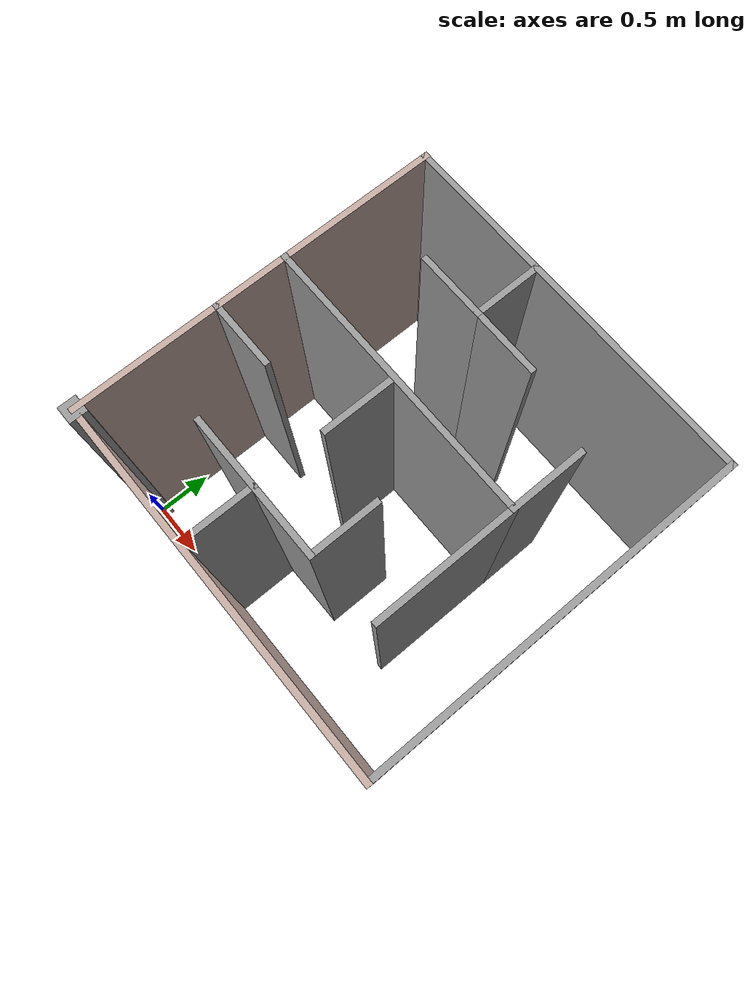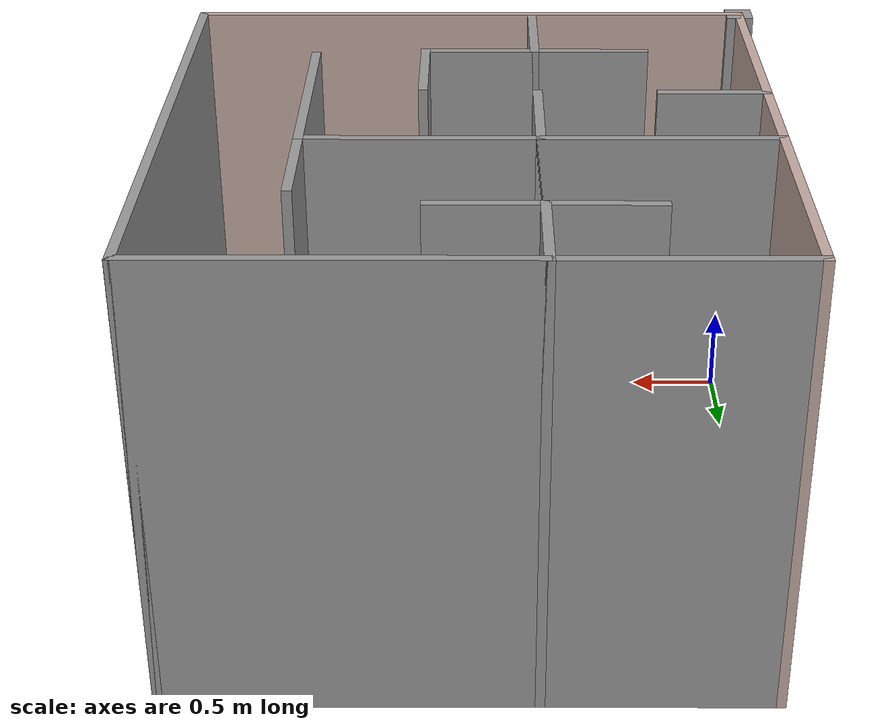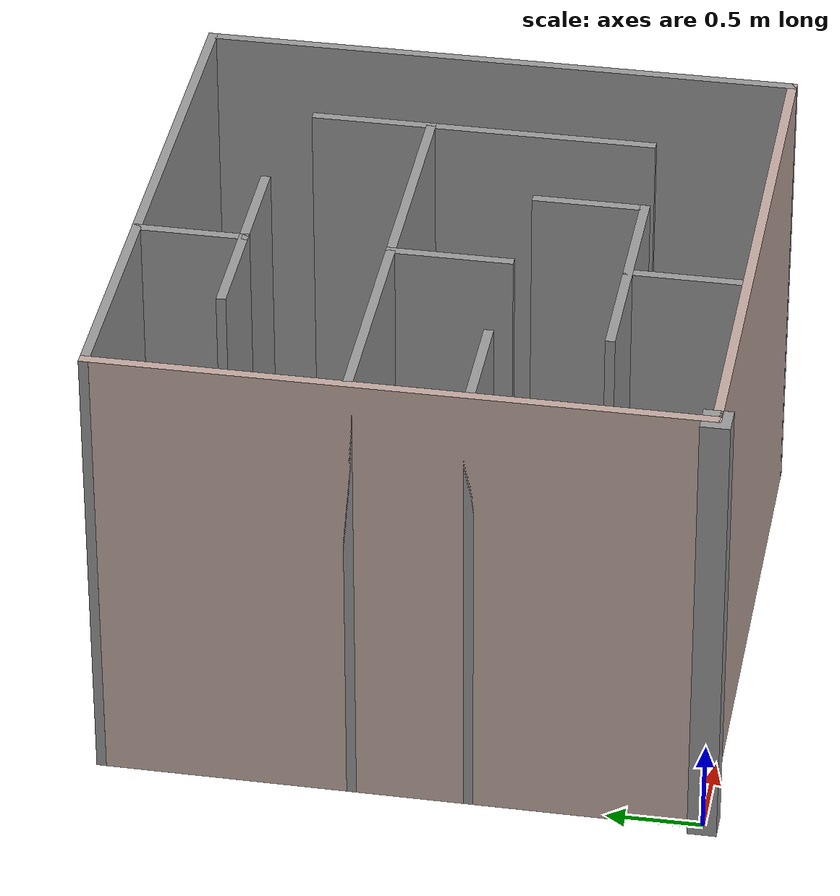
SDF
<sdf version="1.6">
 <world name="default">
  <physics name="1ms" type="ignored">
   <max_step_size>0.001</max_step_size>
   <real_time_factor>1.0</real_time_factor>
  </physics>
  <plugin filename="gz-sim-physics-system" name="gz::sim::systems::Physics"/>
  <plugin filename="gz-sim-user-commands-system" name="gz::sim::systems::UserCommands"/>
  <plugin filename="gz-sim-scene-broadcaster-system" name="gz::sim::systems::SceneBroadcaster"/>
  <plugin filename="gz-sim-sensors-system" name="gz::sim::systems::Sensors">
   <render_engine>ogre2</render_engine>
  </plugin>
  <plugin name="ros_clock_bridge" filename="libignition-gazebo-ros-clock-system.so"/>
  <scene><ambient>0.4 0.4 0.4 1</ambient><background>0.7 0.7 0.7 1</background><shadows>false</shadows></scene>
  <include><uri>model://modulo3_world</uri></include>
 </world>
</sdf>

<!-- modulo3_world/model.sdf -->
<sdf version='1.7'>
  <model name='modulo3_world'>
    <pose>1.5251 1.525 0 0 -0 0</pose>
    <link name='Wall_0'>
      <collision name='Wall_0_Collision'>
        <geometry>
          <box>
            <size>3.15 0.05 2.5</size>
          </box>
        </geometry>
        <pose>0 0 1.25 0 -0 0</pose>
      </collision>
      <visual name='Wall_0_Visual'>
        <pose>0 0 1.25 0 -0 0</pose>
        <geometry>
          <box>
            <size>3.15 0.05 2.5</size>
          </box>
        </geometry>
        <material>
          <script>
            <uri>file://media/materials/scripts/gazebo.material</uri>
            <name>Gazebo/Grey</name>
          </script>
          <ambient>0.760784 0.662745 0.627451 1</ambient>
        </material>
        <meta>
          <layer>0</layer>
        </meta>
      </visual>
      <pose>0.024899 -1.525 0 0 -0 0</pose>
    </link>
    <link name='Wall_12'>
      <collision name='Wall_12_Collision'>
        <geometry>
          <box>
            <size>0.6 0.05 2.5</size>
          </box>
        </geometry>
        <pose>0 0 1.25 0 -0 0</pose>
      </collision>
      <visual name='Wall_12_Visual'>
        <pose>0 0 1.25 0 -0 0</pose>
        <geometry>
          <box>
            <size>0.6 0.05 2.5</size>
          </box>
        </geometry>
        <material>
          <script>
            <uri>file://media/materials/scripts/gazebo.material</uri>
            <name>Gazebo/Grey</name>
          </script>
          <ambient>1 1 1 1</ambient>
        </material>
        <meta>
          <layer>0</layer>
        </meta>
      </visual>
      <pose>-0.325101 1.3 0 0 -0 -1.5708</pose>
    </link>
    <link name='Wall_16'>
      <collision name='Wall_16_Collision'>
        <geometry>
          <box>
            <size>0.6 0.05 2.5</size>
          </box>
        </geometry>
        <pose>0 0 1.25 0 -0 0</pose>
      </collision>
      <visual name='Wall_16_Visual'>
        <pose>0 0 1.25 0 -0 0</pose>
        <geometry>
          <box>
            <size>0.6 0.05 2.5</size>
          </box>
        </geometry>
        <material>
          <script>
            <uri>file://media/materials/scripts/gazebo.material</uri>
            <name>Gazebo/Grey</name>
          </script>
          <ambient>1 1 1 1</ambient>
        </material>
        <meta>
          <layer>0</layer>
        </meta>
      </visual>
      <pose>-0.050101 1.025 0 0 -0 0</pose>
    </link>
    <link name='Wall_18'>
      <collision name='Wall_18_Collision'>
        <geometry>
          <box>
            <size>0.6 0.05 2.5</size>
          </box>
        </geometry>
        <pose>0 0 1.25 0 -0 0</pose>
      </collision>
      <visual name='Wall_18_Visual'>
        <pose>0 0 1.25 0 -0 0</pose>
        <geometry>
          <box>
            <size>0.6 0.05 2.5</size>
          </box>
        </geometry>
        <material>
          <script>
            <uri>file://media/materials/scripts/gazebo.material</uri>
            <name>Gazebo/Grey</name>
          </script>
          <ambient>1 1 1 1</ambient>
        </material>
        <meta>
          <layer>0</layer>
        </meta>
      </visual>
      <pose>-0.600101 1.025 0 0 -0 3.14159</pose>
    </link>
    <link name='Wall_20'>
      <collision name='Wall_20_Collision'>
        <geometry>
          <box>
            <size>2.45 0.05 2.5</size>
          </box>
        </geometry>
        <pose>0 0 1.25 0 -0 0</pose>
      </collision>
      <visual name='Wall_20_Visual'>
        <pose>0 0 1.25 0 -0 0</pose>
        <geometry>
          <box>
            <size>2.45 0.05 2.5</size>
          </box>
        </geometry>
        <material>
          <script>
            <uri>file://media/materials/scripts/gazebo.material</uri>
            <name>Gazebo/Grey</name>
          </script>
          <ambient>1 1 1 1</ambient>
        </material>
        <meta>
          <layer>0</layer>
        </meta>
      </visual>
      <pose>-0.325101 0.275 0 0 -0 0</pose>
    </link>
    <link name='Wall_22'>
      <collision name='Wall_22_Collision'>
        <geometry>
          <box>
            <size>0.65 0.05 2.5</size>
          </box>
        </geometry>
        <pose>0 0 1.25 0 -0 0</pose>
      </collision>
      <visual name='Wall_22_Visual'>
        <pose>0 0 1.25 0 -0 0</pose>
        <geometry>
          <box>
            <size>0.65 0.05 2.5</size>
          </box>
        </geometry>
        <material>
          <script>
            <uri>file://media/materials/scripts/gazebo.material</uri>
            <name>Gazebo/Grey</name>
          </script>
          <ambient>1 1 1 1</ambient>
        </material>
        <meta>
          <layer>0</layer>
        </meta>
      </visual>
      <pose>0.874899 0.575 0 0 -0 1.5708</pose>
    </link>
    <link name='Wall_24'>
      <collision name='Wall_24_Collision'>
        <geometry>
          <box>
            <size>1.2 0.05 2.5</size>
          </box>
        </geometry>
        <pose>0 0 1.25 0 -0 0</pose>
      </collision>
      <visual name='Wall_24_Visual'>
        <pose>0 0 1.25 0 -0 0</pose>
        <geometry>
          <box>
            <size>1.2 0.05 2.5</size>
          </box>
        </geometry>
        <material>
          <script>
            <uri>file://media/materials/scripts/gazebo.material</uri>
            <name>Gazebo/Grey</name>
          </script>
          <ambient>1 1 1 1</ambient>
        </material>
        <meta>
          <layer>0</layer>
        </meta>
      </visual>
      <pose>0.874899 -0.3 0 0 -0 -1.5708</pose>
    </link>
    <link name='Wall_26'>
      <collision name='Wall_26_Collision'>
        <geometry>
          <box>
            <size>0.6 0.05 2.5</size>
          </box>
        </geometry>
        <pose>0 0 1.25 0 -0 0</pose>
      </collision>
      <visual name='Wall_26_Visual'>
        <pose>0 0 1.25 0 -0 0</pose>
        <geometry>
          <box>
            <size>0.6 0.05 2.5</size>
          </box>
        </geometry>
        <material>
          <script>
            <uri>file://media/materials/scripts/gazebo.material</uri>
            <name>Gazebo/Grey</name>
          </script>
          <ambient>1 1 1 1</ambient>
        </material>
        <meta>
          <layer>0</layer>
        </meta>
      </visual>
      <pose>-1.2501 -0.325 0 0 -0 0</pose>
    </link>
    <link name='Wall_3'>
      <collision name='Wall_3_Collision'>
        <geometry>
          <box>
            <size>0.15 0.15 2.5</size>
          </box>
        </geometry>
        <pose>0 0 1.25 0 -0 0</pose>
      </collision>
      <visual name='Wall_3_Visual'>
        <pose>0 0 1.25 0 -0 0</pose>
        <geometry>
          <box>
            <size>0.15 0.15 2.5</size>
          </box>
        </geometry>
        <material>
          <script>
            <uri>file://media/materials/scripts/gazebo.material</uri>
            <name>Gazebo/Grey</name>
          </script>
          <ambient>1 1 1 1</ambient>
        </material>
        <meta>
          <layer>0</layer>
        </meta>
      </visual>
      <pose>-1.5251 -1.525 0 0 -0 0</pose>
    </link>
    <link name='Wall_30'>
      <collision name='Wall_30_Collision'>
        <geometry>
          <box>
            <size>0.6 0.05 2.5</size>
          </box>
        </geometry>
        <pose>0 0 1.25 0 -0 0</pose>
      </collision>
      <visual name='Wall_30_Visual'>
        <pose>0 0 1.25 0 -0 0</pose>
        <geometry>
          <box>
            <size>0.6 0.05 2.5</size>
          </box>
        </geometry>
        <material>
          <script>
            <uri>file://media/materials/scripts/gazebo.material</uri>
            <name>Gazebo/Grey</name>
          </script>
          <ambient>1 1 1 1</ambient>
        </material>
        <meta>
          <layer>0</layer>
        </meta>
      </visual>
      <pose>-0.325101 -1.2 0 0 -0 -1.5708</pose>
    </link>
    <link name='Wall_32'>
      <collision name='Wall_32_Collision'>
        <geometry>
          <box>
            <size>1.25 0.05 2.5</size>
          </box>
        </geometry>
        <pose>0 0 1.25 0 -0 0</pose>
      </collision>
      <visual name='Wall_32_Visual'>
        <pose>0 0 1.25 0 -0 0</pose>
        <geometry>
          <box>
            <size>1.25 0.05 2.5</size>
          </box>
        </geometry>
        <material>
          <script>
            <uri>file://media/materials/scripts/gazebo.material</uri>
            <name>Gazebo/Grey</name>
          </script>
          <ambient>1 1 1 1</ambient>
        </material>
        <meta>
          <layer>0</layer>
        </meta>
      </visual>
      <pose>-0.325101 -0.925 0 0 -0 0</pose>
    </link>
    <link name='Wall_34'>
      <collision name='Wall_34_Collision'>
        <geometry>
          <box>
            <size>0.6 0.05 2.5</size>
          </box>
        </geometry>
        <pose>0 0 1.25 0 -0 0</pose>
      </collision>
      <visual name='Wall_34_Visual'>
        <pose>0 0 1.25 0 -0 0</pose>
        <geometry>
          <box>
            <size>0.6 0.05 2.5</size>
          </box>
        </geometry>
        <material>
          <script>
            <uri>file://media/materials/scripts/gazebo.material</uri>
            <name>Gazebo/Grey</name>
          </script>
          <ambient>1 1 1 1</ambient>
        </material>
        <meta>
          <layer>0</layer>
        </meta>
      </visual>
      <pose>0.274899 -0.65 0 0 -0 1.5708</pose>
    </link>
    <link name='Wall_36'>
      <collision name='Wall_36_Collision'>
        <geometry>
          <box>
            <size>0.65 0.05 2.5</size>
          </box>
        </geometry>
        <pose>0 0 1.25 0 -0 0</pose>
      </collision>
      <visual name='Wall_36_Visual'>
        <pose>0 0 1.25 0 -0 0</pose>
        <geometry>
          <box>
            <size>0.65 0.05 2.5</size>
          </box>
        </geometry>
        <material>
          <script>
            <uri>file://media/materials/scripts/gazebo.material</uri>
            <name>Gazebo/Grey</name>
          </script>
          <ambient>1 1 1 1</ambient>
        </material>
        <meta>
          <layer>0</layer>
        </meta>
      </visual>
      <pose>-0.325101 -0.025 0 0 -0 -1.5708</pose>
    </link>
    <link name='Wall_5'>
      <collision name='Wall_5_Collision'>
        <geometry>
          <box>
            <size>3.15 0.05 2.5</size>
          </box>
        </geometry>
        <pose>0 0 1.25 0 -0 0</pose>
      </collision>
      <visual name='Wall_5_Visual'>
        <pose>0 0 1.25 0 -0 0</pose>
        <geometry>
          <box>
            <size>3.15 0.05 2.5</size>
          </box>
        </geometry>
        <material>
          <script>
            <uri>file://media/materials/scripts/gazebo.material</uri>
            <name>Gazebo/Grey</name>
          </script>
          <ambient>0.760784 0.662745 0.627451 1</ambient>
        </material>
        <meta>
          <layer>0</layer>
        </meta>
      </visual>
      <pose>-1.5251 0.025 0 0 -0 1.5708</pose>
    </link>
    <link name='Wall_7'>
      <collision name='Wall_7_Collision'>
        <geometry>
          <box>
            <size>3.1504 0.05 2.5</size>
          </box>
        </geometry>
        <pose>0 0 1.25 0 -0 0</pose>
      </collision>
      <visual name='Wall_7_Visual'>
        <pose>0 0 1.25 0 -0 0</pose>
        <geometry>
          <box>
            <size>3.1504 0.05 2.5</size>
          </box>
        </geometry>
        <material>
          <script>
            <uri>file://media/materials/scripts/gazebo.material</uri>
            <name>Gazebo/Grey</name>
          </script>
          <ambient>1 1 1 1</ambient>
        </material>
        <meta>
          <layer>0</layer>
        </meta>
      </visual>
      <pose>0.024899 1.575 0 0 -0 0</pose>
    </link>
    <link name='Wall_9'>
      <collision name='Wall_9_Collision'>
        <geometry>
          <box>
            <size>3.15 0.05 2.5</size>
          </box>
        </geometry>
        <pose>0 0 1.25 0 -0 0</pose>
      </collision>
      <visual name='Wall_9_Visual'>
        <pose>0 0 1.25 0 -0 0</pose>
        <geometry>
          <box>
            <size>3.15 0.05 2.5</size>
          </box>
        </geometry>
        <material>
          <script>
            <uri>file://media/materials/scripts/gazebo.material</uri>
            <name>Gazebo/Grey</name>
          </script>
          <ambient>1 1 1 1</ambient>
        </material>
        <meta>
          <layer>0</layer>
        </meta>
      </visual>
      <pose>1.5749 0.025 0 0 -0 1.5708</pose>
    </link>
    <static>1</static>
  </model>
</sdf>
